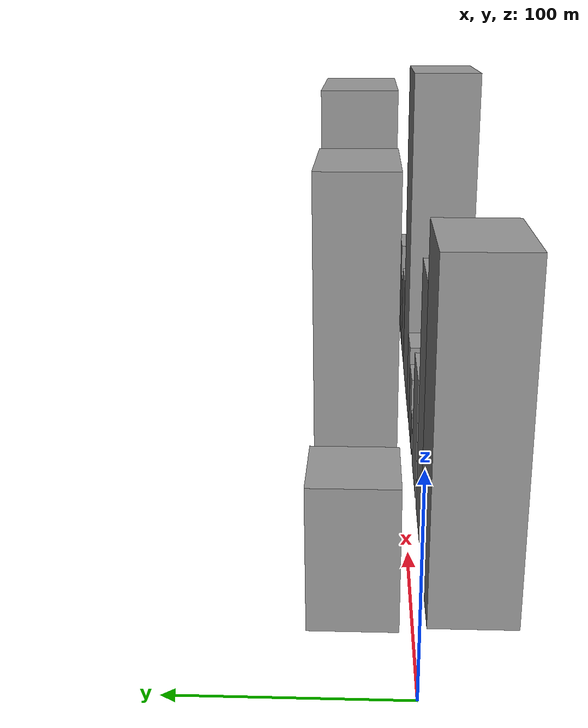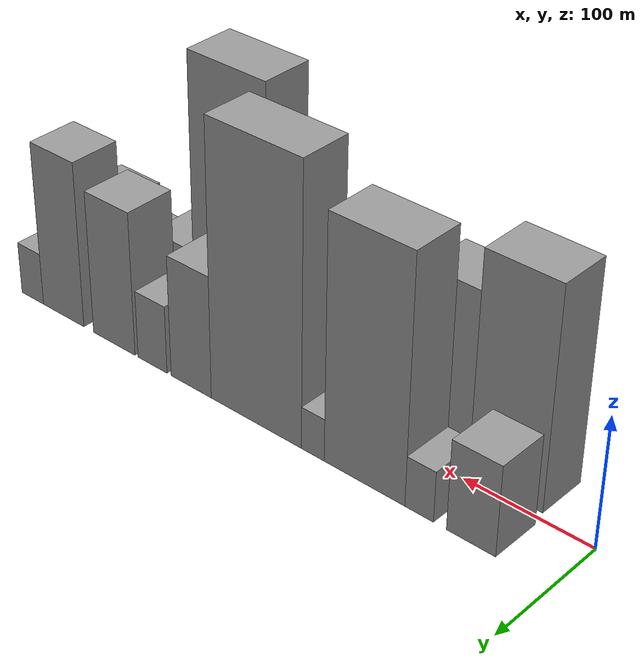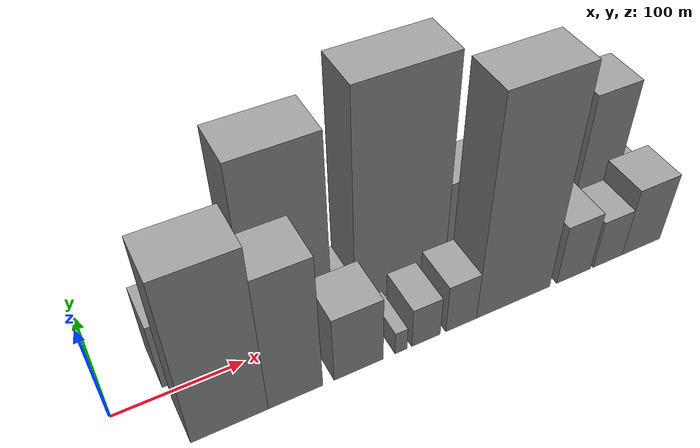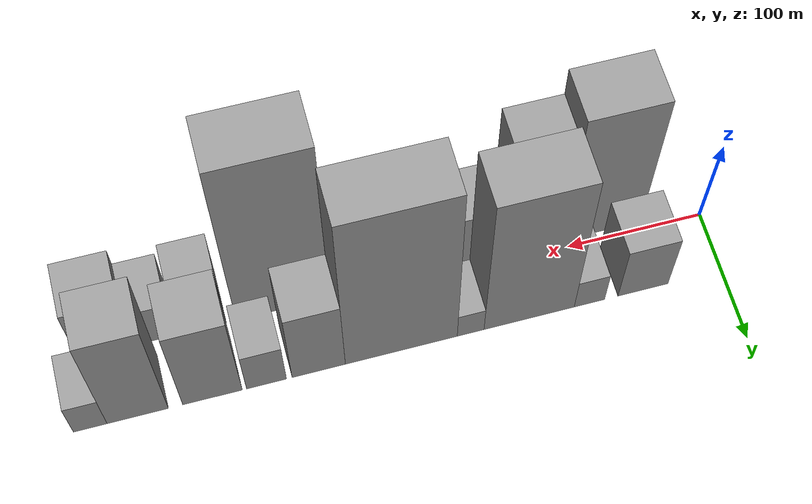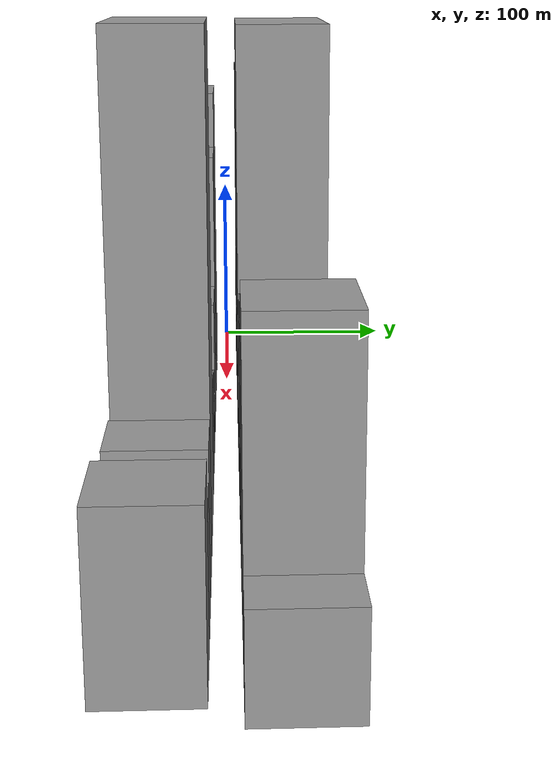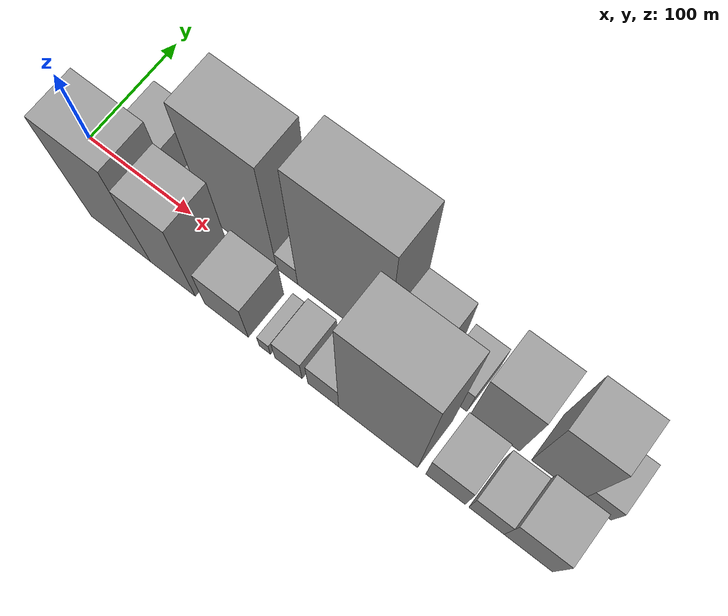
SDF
<sdf version="1.6">
 <world name="default">
  <scene>
   <sky><clouds><speed>12</speed></clouds></sky>
   <ambient>0.4 0.4 0.4 1</ambient>
   <background>0.7 0.7 0.7 1</background>
   <shadows>1</shadows>
  </scene>
  <gravity>0 0 -9.8066</gravity>
  <magnetic_field>6e-06 2.3e-05 -4.2e-05</magnetic_field>
  <physics default="0" name="default_physics" type="ode">
   <ode>
    <solver>
     <type>quick</type>
     <iters>10</iters>
     <sor>1.0</sor>
     <use_dynamic_moi_rescaling>0</use_dynamic_moi_rescaling>
    </solver>
    <constraints>
     <cfm>0</cfm>
     <erp>0.2</erp>
     <contact_max_correcting_vel>100</contact_max_correcting_vel>
     <contact_surface_layer>0.001</contact_surface_layer>
    </constraints>
   </ode>
   <max_step_size>0.004</max_step_size>
   <real_time_factor>1</real_time_factor>
   <real_time_update_rate>250</real_time_update_rate>
  </physics>
  <light name="sun" type="directional">
   <pose>0 0 10 0 0 0</pose>
   <diffuse>0.8 0.8 0.8 1</diffuse>
   <specular>0.2 0.2 0.2 1</specular>
   <attenuation>
    <range>1000</range>
    <constant>0.9</constant>
    <linear>0.01</linear>
    <quadratic>0.001</quadratic>
   </attenuation>
   <direction>-0.5 0.1 -0.9</direction>
  </light>
  <model name="building_1">
   <static>1</static>
   <pose>58.6165 26.0000 0 0.000000 0.000000 1.570796</pose>
   <link name="link">
    <pose>0 0 34.50 0 0 0</pose>
    <collision name="collision"><geometry><box><size>40.0000 37.2331 69.0000</size></box></geometry></collision>
    <visual name="visual">
     <cast_shadows>0</cast_shadows>
     <geometry><box><size>40.0000 37.2331 69.0000</size></box></geometry>
     <material>
      <script>
       <uri>model://grey_wall/materials/scripts</uri>
       <uri>model://grey_wall/materials/textures</uri>
       <name>vrc/grey_wall</name>
      </script>
     </material>
    </visual>
   </link>
  </model>
  <model name="building_2">
   <static>1</static>
   <pose>98.4645 26.0000 0 0.000000 0.000000 1.570796</pose>
   <link name="link">
    <pose>0 0 19.50 0 0 0</pose>
    <collision name="collision"><geometry><box><size>40.0000 22.4628 39.0000</size></box></geometry></collision>
    <visual name="visual">
     <cast_shadows>0</cast_shadows>
     <geometry><box><size>40.0000 22.4628 39.0000</size></box></geometry>
     <material>
      <script>
       <uri>model://grey_wall/materials/scripts</uri>
       <uri>model://grey_wall/materials/textures</uri>
       <name>vrc/grey_wall</name>
      </script>
     </material>
    </visual>
   </link>
  </model>
  <model name="building_3">
   <static>1</static>
   <pose>142.8023 26.0000 0 0.000000 0.000000 1.570796</pose>
   <link name="link">
    <pose>0 0 93.00 0 0 0</pose>
    <collision name="collision"><geometry><box><size>40.0000 66.2130 186.0000</size></box></geometry></collision>
    <visual name="visual">
     <cast_shadows>0</cast_shadows>
     <geometry><box><size>40.0000 66.2130 186.0000</size></box></geometry>
     <material>
      <script>
       <uri>model://grey_wall/materials/scripts</uri>
       <uri>model://grey_wall/materials/textures</uri>
       <name>vrc/grey_wall</name>
      </script>
     </material>
    </visual>
   </link>
  </model>
  <model name="building_4">
   <static>1</static>
   <pose>185.6401 26.0000 0 0.000000 0.000000 1.570796</pose>
   <link name="link">
    <pose>0 0 16.50 0 0 0</pose>
    <collision name="collision"><geometry><box><size>40.0000 19.4625 33.0000</size></box></geometry></collision>
    <visual name="visual">
     <cast_shadows>0</cast_shadows>
     <geometry><box><size>40.0000 19.4625 33.0000</size></box></geometry>
     <material>
      <script>
       <uri>model://grey_wall/materials/scripts</uri>
       <uri>model://grey_wall/materials/textures</uri>
       <name>vrc/grey_wall</name>
      </script>
     </material>
    </visual>
   </link>
  </model>
  <model name="building_5">
   <static>1</static>
   <pose>235.6390 26.0000 0 0.000000 0.000000 1.570796</pose>
   <link name="link">
    <pose>0 0 106.50 0 0 0</pose>
    <collision name="collision"><geometry><box><size>40.0000 80.5354 213.0000</size></box></geometry></collision>
    <visual name="visual">
     <cast_shadows>0</cast_shadows>
     <geometry><box><size>40.0000 80.5354 213.0000</size></box></geometry>
     <material>
      <script>
       <uri>model://grey_wall/materials/scripts</uri>
       <uri>model://grey_wall/materials/textures</uri>
       <name>vrc/grey_wall</name>
      </script>
     </material>
    </visual>
   </link>
  </model>
  <model name="building_6">
   <static>1</static>
   <pose>294.8504 26.0000 0 0.000000 0.000000 1.570796</pose>
   <link name="link">
    <pose>0 0 48.00 0 0 0</pose>
    <collision name="collision"><geometry><box><size>40.0000 37.8873 96.0000</size></box></geometry></collision>
    <visual name="visual">
     <cast_shadows>0</cast_shadows>
     <geometry><box><size>40.0000 37.8873 96.0000</size></box></geometry>
     <material>
      <script>
       <uri>model://grey_wall/materials/scripts</uri>
       <uri>model://grey_wall/materials/textures</uri>
       <name>vrc/grey_wall</name>
      </script>
     </material>
    </visual>
   </link>
  </model>
  <model name="building_7">
   <static>1</static>
   <pose>331.8837 26.0000 0 0.000000 0.000000 1.570796</pose>
   <link name="link">
    <pose>0 0 27.00 0 0 0</pose>
    <collision name="collision"><geometry><box><size>40.0000 28.1794 54.0000</size></box></geometry></collision>
    <visual name="visual">
     <cast_shadows>0</cast_shadows>
     <geometry><box><size>40.0000 28.1794 54.0000</size></box></geometry>
     <material>
      <script>
       <uri>model://grey_wall/materials/scripts</uri>
       <uri>model://grey_wall/materials/textures</uri>
       <name>vrc/grey_wall</name>
      </script>
     </material>
    </visual>
   </link>
  </model>
  <model name="building_8">
   <static>1</static>
   <pose>369.8284 26.0000 0 0.000000 0.000000 1.570796</pose>
   <link name="link">
    <pose>0 0 57.00 0 0 0</pose>
    <collision name="collision"><geometry><box><size>40.0000 41.7099 114.0000</size></box></geometry></collision>
    <visual name="visual">
     <cast_shadows>0</cast_shadows>
     <geometry><box><size>40.0000 41.7099 114.0000</size></box></geometry>
     <material>
      <script>
       <uri>model://grey_wall/materials/scripts</uri>
       <uri>model://grey_wall/materials/textures</uri>
       <name>vrc/grey_wall</name>
      </script>
     </material>
    </visual>
   </link>
  </model>
  <model name="building_9">
   <static>1</static>
   <pose>421.9408 26.0000 0 0.000000 0.000000 1.570796</pose>
   <link name="link">
    <pose>0 0 66.00 0 0 0</pose>
    <collision name="collision"><geometry><box><size>40.0000 42.5149 132.0000</size></box></geometry></collision>
    <visual name="visual">
     <cast_shadows>0</cast_shadows>
     <geometry><box><size>40.0000 42.5149 132.0000</size></box></geometry>
     <material>
      <script>
       <uri>model://grey_wall/materials/scripts</uri>
       <uri>model://grey_wall/materials/textures</uri>
       <name>vrc/grey_wall</name>
      </script>
     </material>
    </visual>
   </link>
  </model>
  <model name="building_10">
   <static>1</static>
   <pose>454.7749 26.0000 0 0.000000 0.000000 1.570796</pose>
   <link name="link">
    <pose>0 0 21.00 0 0 0</pose>
    <collision name="collision"><geometry><box><size>40.0000 23.1532 42.0000</size></box></geometry></collision>
    <visual name="visual">
     <cast_shadows>0</cast_shadows>
     <geometry><box><size>40.0000 23.1532 42.0000</size></box></geometry>
     <material>
      <script>
       <uri>model://grey_wall/materials/scripts</uri>
       <uri>model://grey_wall/materials/textures</uri>
       <name>vrc/grey_wall</name>
      </script>
     </material>
    </visual>
   </link>
  </model>
  <model name="building_11">
   <static>1</static>
   <pose>71.6704 -26.0000 0 0.000000 0.000000 1.570796</pose>
   <link name="link">
    <pose>0 0 84.00 0 0 0</pose>
    <collision name="collision"><geometry><box><size>40.0000 57.3407 168.0000</size></box></geometry></collision>
    <visual name="visual">
     <cast_shadows>0</cast_shadows>
     <geometry><box><size>40.0000 57.3407 168.0000</size></box></geometry>
     <material>
      <script>
       <uri>model://grey_wall/materials/scripts</uri>
       <uri>model://grey_wall/materials/textures</uri>
       <name>vrc/grey_wall</name>
      </script>
     </material>
    </visual>
   </link>
  </model>
  <model name="building_12">
   <static>1</static>
   <pose>121.6230 -26.0000 0 0.000000 0.000000 1.570796</pose>
   <link name="link">
    <pose>0 0 69.00 0 0 0</pose>
    <collision name="collision"><geometry><box><size>40.0000 42.5645 138.0000</size></box></geometry></collision>
    <visual name="visual">
     <cast_shadows>0</cast_shadows>
     <geometry><box><size>40.0000 42.5645 138.0000</size></box></geometry>
     <material>
      <script>
       <uri>model://grey_wall/materials/scripts</uri>
       <uri>model://grey_wall/materials/textures</uri>
       <name>vrc/grey_wall</name>
      </script>
     </material>
    </visual>
   </link>
  </model>
  <model name="building_13">
   <static>1</static>
   <pose>172.0140 -26.0000 0 0.000000 0.000000 1.570796</pose>
   <link name="link">
    <pose>0 0 34.50 0 0 0</pose>
    <collision name="collision"><geometry><box><size>40.0000 40.2175 69.0000</size></box></geometry></collision>
    <visual name="visual">
     <cast_shadows>0</cast_shadows>
     <geometry><box><size>40.0000 40.2175 69.0000</size></box></geometry>
     <material>
      <script>
       <uri>model://grey_wall/materials/scripts</uri>
       <uri>model://grey_wall/materials/textures</uri>
       <name>vrc/grey_wall</name>
      </script>
     </material>
    </visual>
   </link>
  </model>
  <model name="building_14">
   <static>1</static>
   <pose>207.2514 -26.0000 0 0.000000 0.000000 1.570796</pose>
   <link name="link">
    <pose>0 0 12.00 0 0 0</pose>
    <collision name="collision"><geometry><box><size>40.0000 10.2573 24.0000</size></box></geometry></collision>
    <visual name="visual">
     <cast_shadows>0</cast_shadows>
     <geometry><box><size>40.0000 10.2573 24.0000</size></box></geometry>
     <material>
      <script>
       <uri>model://grey_wall/materials/scripts</uri>
       <uri>model://grey_wall/materials/textures</uri>
       <name>vrc/grey_wall</name>
      </script>
     </material>
    </visual>
   </link>
  </model>
  <model name="building_15">
   <static>1</static>
   <pose>228.6839 -26.0000 0 0.000000 0.000000 1.570796</pose>
   <link name="link">
    <pose>0 0 21.00 0 0 0</pose>
    <collision name="collision"><geometry><box><size>40.0000 24.6078 42.0000</size></box></geometry></collision>
    <visual name="visual">
     <cast_shadows>0</cast_shadows>
     <geometry><box><size>40.0000 24.6078 42.0000</size></box></geometry>
     <material>
      <script>
       <uri>model://grey_wall/materials/scripts</uri>
       <uri>model://grey_wall/materials/textures</uri>
       <name>vrc/grey_wall</name>
      </script>
     </material>
    </visual>
   </link>
  </model>
  <model name="building_16">
   <static>1</static>
   <pose>259.6617 -26.0000 0 0.000000 0.000000 1.570796</pose>
   <link name="link">
    <pose>0 0 25.50 0 0 0</pose>
    <collision name="collision"><geometry><box><size>40.0000 27.3479 51.0000</size></box></geometry></collision>
    <visual name="visual">
     <cast_shadows>0</cast_shadows>
     <geometry><box><size>40.0000 27.3479 51.0000</size></box></geometry>
     <material>
      <script>
       <uri>model://grey_wall/materials/scripts</uri>
       <uri>model://grey_wall/materials/textures</uri>
       <name>vrc/grey_wall</name>
      </script>
     </material>
    </visual>
   </link>
  </model>
  <model name="building_17">
   <static>1</static>
   <pose>307.6562 -26.0000 0 0.000000 0.000000 1.570796</pose>
   <link name="link">
    <pose>0 0 108.00 0 0 0</pose>
    <collision name="collision"><geometry><box><size>40.0000 68.6410 216.0000</size></box></geometry></collision>
    <visual name="visual">
     <cast_shadows>0</cast_shadows>
     <geometry><box><size>40.0000 68.6410 216.0000</size></box></geometry>
     <material>
      <script>
       <uri>model://grey_wall/materials/scripts</uri>
       <uri>model://grey_wall/materials/textures</uri>
       <name>vrc/grey_wall</name>
      </script>
     </material>
    </visual>
   </link>
  </model>
  <model name="building_18">
   <static>1</static>
   <pose>365.6419 -26.0000 0 0.000000 0.000000 1.570796</pose>
   <link name="link">
    <pose>0 0 31.50 0 0 0</pose>
    <collision name="collision"><geometry><box><size>40.0000 33.3304 63.0000</size></box></geometry></collision>
    <visual name="visual">
     <cast_shadows>0</cast_shadows>
     <geometry><box><size>40.0000 33.3304 63.0000</size></box></geometry>
     <material>
      <script>
       <uri>model://grey_wall/materials/scripts</uri>
       <uri>model://grey_wall/materials/textures</uri>
       <name>vrc/grey_wall</name>
      </script>
     </material>
    </visual>
   </link>
  </model>
  <model name="building_19">
   <static>1</static>
   <pose>399.9602 -26.0000 0 0.000000 0.000000 1.570796</pose>
   <link name="link">
    <pose>0 0 25.50 0 0 0</pose>
    <collision name="collision"><geometry><box><size>40.0000 29.3062 51.0000</size></box></geometry></collision>
    <visual name="visual">
     <cast_shadows>0</cast_shadows>
     <geometry><box><size>40.0000 29.3062 51.0000</size></box></geometry>
     <material>
      <script>
       <uri>model://grey_wall/materials/scripts</uri>
       <uri>model://grey_wall/materials/textures</uri>
       <name>vrc/grey_wall</name>
      </script>
     </material>
    </visual>
   </link>
  </model>
  <model name="building_20">
   <static>1</static>
   <pose>434.3916 -26.0000 0 0.000000 0.000000 1.570796</pose>
   <link name="link">
    <pose>0 0 36.00 0 0 0</pose>
    <collision name="collision"><geometry><box><size>40.0000 39.5566 72.0000</size></box></geometry></collision>
    <visual name="visual">
     <cast_shadows>0</cast_shadows>
     <geometry><box><size>40.0000 39.5566 72.0000</size></box></geometry>
     <material>
      <script>
       <uri>model://grey_wall/materials/scripts</uri>
       <uri>model://grey_wall/materials/textures</uri>
       <name>vrc/grey_wall</name>
      </script>
     </material>
    </visual>
   </link>
  </model>
 </world>
</sdf>
